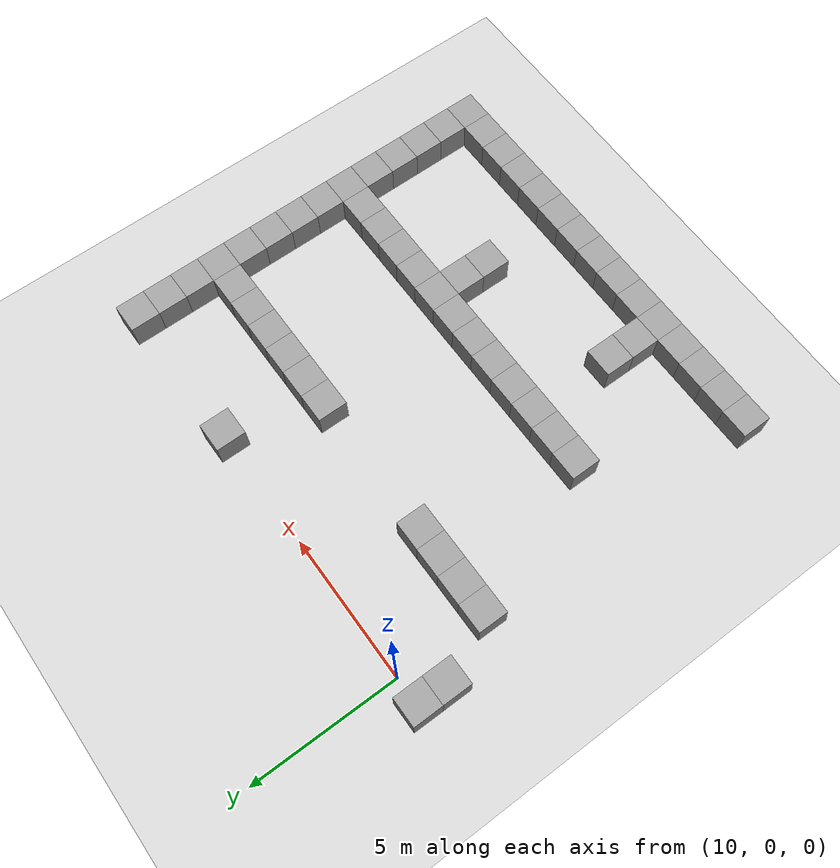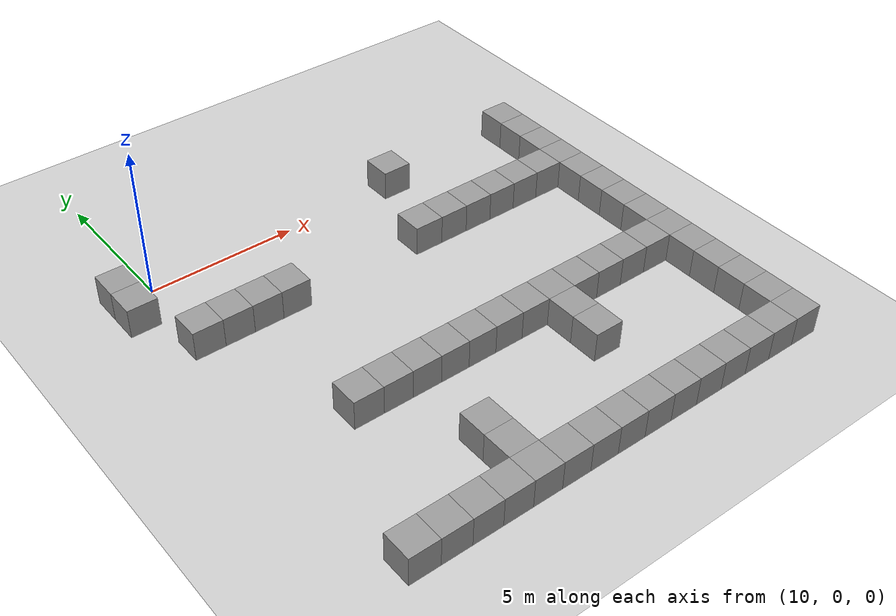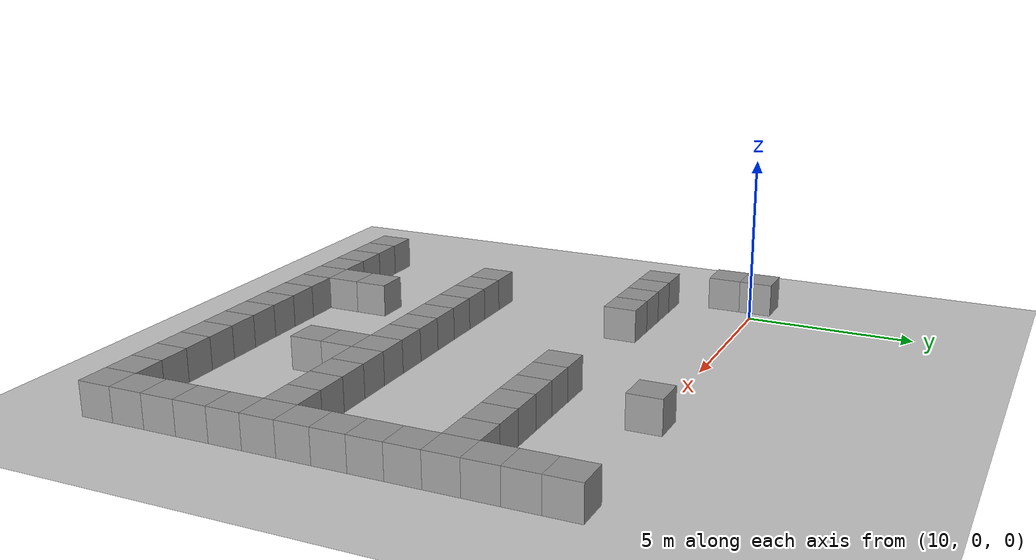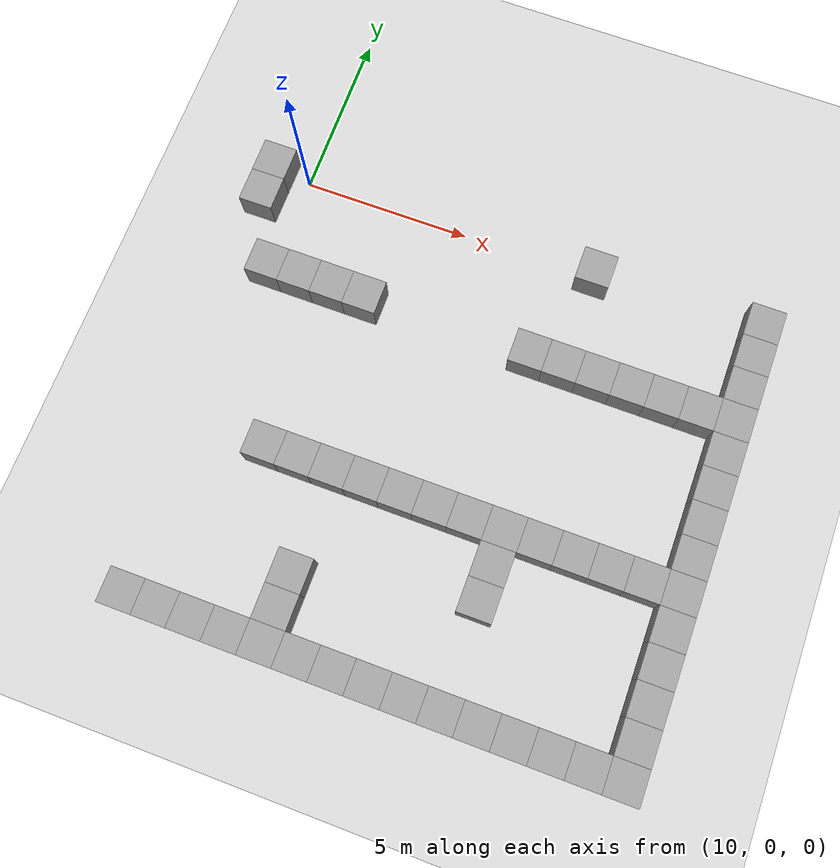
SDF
<sdf version="1.6">
 <world name="default">
  <model name="ground_plane">
   <static>1</static>
   <link name="link">
    <collision name="collision">
     <geometry><plane><normal>0 0 1</normal><size>100 100</size></plane></geometry>
     <surface><friction><ode><mu>100</mu><mu2>50</mu2></ode></friction></surface>
    </collision>
    <visual name="visual">
     <cast_shadows>0</cast_shadows>
     <geometry><plane><normal>0 0 1</normal><size>100 100</size></plane></geometry>
     <material>
      <script><uri>file://media/materials/scripts/gazebo.material</uri><name>Gazebo/Grey</name></script>
     </material>
    </visual>
    <velocity_decay><linear>0</linear><angular>0</angular></velocity_decay>
   </link>
  </model>
  <model name="unit_box_27">
   <pose>9 -1 0.5 0 0 0</pose>
   <static>1</static>
   <link name="link">
    <inertial>
     <mass>1</mass>
     <inertia><ixx>1</ixx><ixy>0</ixy><ixz>0</ixz><iyy>1</iyy><iyz>0</iyz><izz>1</izz></inertia>
    </inertial>
    <collision name="collision"><geometry><box><size>1 1 1</size></box></geometry></collision>
    <visual name="visual">
     <geometry><box><size>1 1 1</size></box></geometry>
     <material>
      <script><uri>file://media/materials/scripts/gazebo.material</uri><name>Gazebo/Grey</name></script>
     </material>
    </visual>
    <velocity_decay><linear>0</linear><angular>0</angular></velocity_decay>
   </link>
   <static>0</static>
  </model>
  <model name="unit_box_28">
   <pose>9 0 0.5 0 0 0</pose>
   <static>1</static>
   <link name="link">
    <inertial>
     <mass>1</mass>
     <inertia><ixx>1</ixx><ixy>0</ixy><ixz>0</ixz><iyy>1</iyy><iyz>0</iyz><izz>1</izz></inertia>
    </inertial>
    <collision name="collision"><geometry><box><size>1 1 1</size></box></geometry></collision>
    <visual name="visual">
     <geometry><box><size>1 1 1</size></box></geometry>
     <material>
      <script><uri>file://media/materials/scripts/gazebo.material</uri><name>Gazebo/Grey</name></script>
     </material>
    </visual>
    <velocity_decay><linear>0</linear><angular>0</angular></velocity_decay>
   </link>
   <static>0</static>
  </model>
  <model name="unit_box_35">
   <pose>10 -3 0.5 0 0 0</pose>
   <static>1</static>
   <link name="link">
    <inertial>
     <mass>1</mass>
     <inertia><ixx>1</ixx><ixy>0</ixy><ixz>0</ixz><iyy>1</iyy><iyz>0</iyz><izz>1</izz></inertia>
    </inertial>
    <collision name="collision"><geometry><box><size>1 1 1</size></box></geometry></collision>
    <visual name="visual">
     <geometry><box><size>1 1 1</size></box></geometry>
     <material>
      <script><uri>file://media/materials/scripts/gazebo.material</uri><name>Gazebo/Grey</name></script>
     </material>
    </visual>
    <velocity_decay><linear>0</linear><angular>0</angular></velocity_decay>
   </link>
   <static>0</static>
  </model>
  <model name="unit_box_36">
   <pose>11 -3 0.5 0 0 0</pose>
   <static>1</static>
   <link name="link">
    <inertial>
     <mass>1</mass>
     <inertia><ixx>1</ixx><ixy>0</ixy><ixz>0</ixz><iyy>1</iyy><iyz>0</iyz><izz>1</izz></inertia>
    </inertial>
    <collision name="collision"><geometry><box><size>1 1 1</size></box></geometry></collision>
    <visual name="visual">
     <geometry><box><size>1 1 1</size></box></geometry>
     <material>
      <script><uri>file://media/materials/scripts/gazebo.material</uri><name>Gazebo/Grey</name></script>
     </material>
    </visual>
    <velocity_decay><linear>0</linear><angular>0</angular></velocity_decay>
   </link>
   <static>0</static>
  </model>
  <model name="unit_box_37">
   <pose>12 -3 0.5 0 0 0</pose>
   <static>1</static>
   <link name="link">
    <inertial>
     <mass>1</mass>
     <inertia><ixx>1</ixx><ixy>0</ixy><ixz>0</ixz><iyy>1</iyy><iyz>0</iyz><izz>1</izz></inertia>
    </inertial>
    <collision name="collision"><geometry><box><size>1 1 1</size></box></geometry></collision>
    <visual name="visual">
     <geometry><box><size>1 1 1</size></box></geometry>
     <material>
      <script><uri>file://media/materials/scripts/gazebo.material</uri><name>Gazebo/Grey</name></script>
     </material>
    </visual>
    <velocity_decay><linear>0</linear><angular>0</angular></velocity_decay>
   </link>
   <static>0</static>
  </model>
  <model name="unit_box_129">
   <pose>13 -3 0.5 0 0 0</pose>
   <static>1</static>
   <link name="link">
    <inertial>
     <mass>1</mass>
     <inertia><ixx>1</ixx><ixy>0</ixy><ixz>0</ixz><iyy>1</iyy><iyz>0</iyz><izz>1</izz></inertia>
    </inertial>
    <collision name="collision"><geometry><box><size>1 1 1</size></box></geometry></collision>
    <visual name="visual">
     <geometry><box><size>1 1 1</size></box></geometry>
     <material>
      <script><uri>file://media/materials/scripts/gazebo.material</uri><name>Gazebo/Grey</name></script>
     </material>
    </visual>
    <velocity_decay><linear>0</linear><angular>0</angular></velocity_decay>
   </link>
   <static>0</static>
  </model>
  <model name="unit_box_182">
   <pose>24 -1 0.5 0 0 0</pose>
   <static>1</static>
   <link name="link">
    <inertial>
     <mass>1</mass>
     <inertia><ixx>1</ixx><ixy>0</ixy><ixz>0</ixz><iyy>1</iyy><iyz>0</iyz><izz>1</izz></inertia>
    </inertial>
    <collision name="collision"><geometry><box><size>1 1 1</size></box></geometry></collision>
    <visual name="visual">
     <geometry><box><size>1 1 1</size></box></geometry>
     <material>
      <script><uri>file://media/materials/scripts/gazebo.material</uri><name>Gazebo/Grey</name></script>
     </material>
    </visual>
    <velocity_decay><linear>0</linear><angular>0</angular></velocity_decay>
   </link>
   <static>0</static>
  </model>
  <model name="unit_box_199">
   <pose>24 0 0.5 0 0 0</pose>
   <static>1</static>
   <link name="link">
    <inertial>
     <mass>1</mass>
     <inertia><ixx>1</ixx><ixy>0</ixy><ixz>0</ixz><iyy>1</iyy><iyz>0</iyz><izz>1</izz></inertia>
    </inertial>
    <collision name="collision"><geometry><box><size>1 1 1</size></box></geometry></collision>
    <visual name="visual">
     <geometry><box><size>1 1 1</size></box></geometry>
     <material>
      <script><uri>file://media/materials/scripts/gazebo.material</uri><name>Gazebo/Grey</name></script>
     </material>
    </visual>
    <velocity_decay><linear>0</linear><angular>0</angular></velocity_decay>
   </link>
   <static>0</static>
  </model>
  <model name="unit_box_203">
   <pose>19 0 0.5 0 0 0</pose>
   <static>1</static>
   <link name="link">
    <inertial>
     <mass>1</mass>
     <inertia><ixx>1</ixx><ixy>0</ixy><ixz>0</ixz><iyy>1</iyy><iyz>0</iyz><izz>1</izz></inertia>
    </inertial>
    <collision name="collision"><geometry><box><size>1 1 1</size></box></geometry></collision>
    <visual name="visual">
     <geometry><box><size>1 1 1</size></box></geometry>
     <material>
      <script><uri>file://media/materials/scripts/gazebo.material</uri><name>Gazebo/Grey</name></script>
     </material>
    </visual>
    <velocity_decay><linear>0</linear><angular>0</angular></velocity_decay>
   </link>
   <static>0</static>
  </model>
  <model name="unit_box_204">
   <pose>24 -2 0.5 0 0 0</pose>
   <static>1</static>
   <link name="link">
    <inertial>
     <mass>1</mass>
     <inertia><ixx>1</ixx><ixy>0</ixy><ixz>0</ixz><iyy>1</iyy><iyz>0</iyz><izz>1</izz></inertia>
    </inertial>
    <collision name="collision"><geometry><box><size>1 1 1</size></box></geometry></collision>
    <visual name="visual">
     <geometry><box><size>1 1 1</size></box></geometry>
     <material>
      <script><uri>file://media/materials/scripts/gazebo.material</uri><name>Gazebo/Grey</name></script>
     </material>
    </visual>
    <velocity_decay><linear>0</linear><angular>0</angular></velocity_decay>
   </link>
   <static>0</static>
  </model>
  <model name="unit_box_205">
   <pose>24 -3 0.5 0 0 0</pose>
   <static>1</static>
   <link name="link">
    <inertial>
     <mass>1</mass>
     <inertia><ixx>1</ixx><ixy>0</ixy><ixz>0</ixz><iyy>1</iyy><iyz>0</iyz><izz>1</izz></inertia>
    </inertial>
    <collision name="collision"><geometry><box><size>1 1 1</size></box></geometry></collision>
    <visual name="visual">
     <geometry><box><size>1 1 1</size></box></geometry>
     <material>
      <script><uri>file://media/materials/scripts/gazebo.material</uri><name>Gazebo/Grey</name></script>
     </material>
    </visual>
    <velocity_decay><linear>0</linear><angular>0</angular></velocity_decay>
   </link>
   <static>0</static>
  </model>
  <model name="unit_box_206">
   <pose>24 -4 0.5 0 0 0</pose>
   <static>1</static>
   <link name="link">
    <inertial>
     <mass>1</mass>
     <inertia><ixx>1</ixx><ixy>0</ixy><ixz>0</ixz><iyy>1</iyy><iyz>0</iyz><izz>1</izz></inertia>
    </inertial>
    <collision name="collision"><geometry><box><size>1 1 1</size></box></geometry></collision>
    <visual name="visual">
     <geometry><box><size>1 1 1</size></box></geometry>
     <material>
      <script><uri>file://media/materials/scripts/gazebo.material</uri><name>Gazebo/Grey</name></script>
     </material>
    </visual>
    <velocity_decay><linear>0</linear><angular>0</angular></velocity_decay>
   </link>
   <static>0</static>
  </model>
  <model name="unit_box_207">
   <pose>24 -5 0.5 0 0 0</pose>
   <static>1</static>
   <link name="link">
    <inertial>
     <mass>1</mass>
     <inertia><ixx>1</ixx><ixy>0</ixy><ixz>0</ixz><iyy>1</iyy><iyz>0</iyz><izz>1</izz></inertia>
    </inertial>
    <collision name="collision"><geometry><box><size>1 1 1</size></box></geometry></collision>
    <visual name="visual">
     <geometry><box><size>1 1 1</size></box></geometry>
     <material>
      <script><uri>file://media/materials/scripts/gazebo.material</uri><name>Gazebo/Grey</name></script>
     </material>
    </visual>
    <velocity_decay><linear>0</linear><angular>0</angular></velocity_decay>
   </link>
   <static>0</static>
  </model>
  <model name="unit_box_208">
   <pose>24 -6 0.5 0 0 0</pose>
   <static>1</static>
   <link name="link">
    <inertial>
     <mass>1</mass>
     <inertia><ixx>1</ixx><ixy>0</ixy><ixz>0</ixz><iyy>1</iyy><iyz>0</iyz><izz>1</izz></inertia>
    </inertial>
    <collision name="collision"><geometry><box><size>1 1 1</size></box></geometry></collision>
    <visual name="visual">
     <geometry><box><size>1 1 1</size></box></geometry>
     <material>
      <script><uri>file://media/materials/scripts/gazebo.material</uri><name>Gazebo/Grey</name></script>
     </material>
    </visual>
    <velocity_decay><linear>0</linear><angular>0</angular></velocity_decay>
   </link>
   <static>0</static>
  </model>
  <model name="unit_box_209">
   <pose>18 -3 0.5 0 0 0</pose>
   <static>1</static>
   <link name="link">
    <inertial>
     <mass>1</mass>
     <inertia><ixx>1</ixx><ixy>0</ixy><ixz>0</ixz><iyy>1</iyy><iyz>0</iyz><izz>1</izz></inertia>
    </inertial>
    <collision name="collision"><geometry><box><size>1 1 1</size></box></geometry></collision>
    <visual name="visual">
     <geometry><box><size>1 1 1</size></box></geometry>
     <material>
      <script><uri>file://media/materials/scripts/gazebo.material</uri><name>Gazebo/Grey</name></script>
     </material>
    </visual>
    <velocity_decay><linear>0</linear><angular>0</angular></velocity_decay>
   </link>
   <static>0</static>
  </model>
  <model name="unit_box_210">
   <pose>19 -3 0.5 0 0 0</pose>
   <static>1</static>
   <link name="link">
    <inertial>
     <mass>1</mass>
     <inertia><ixx>1</ixx><ixy>0</ixy><ixz>0</ixz><iyy>1</iyy><iyz>0</iyz><izz>1</izz></inertia>
    </inertial>
    <collision name="collision"><geometry><box><size>1 1 1</size></box></geometry></collision>
    <visual name="visual">
     <geometry><box><size>1 1 1</size></box></geometry>
     <material>
      <script><uri>file://media/materials/scripts/gazebo.material</uri><name>Gazebo/Grey</name></script>
     </material>
    </visual>
    <velocity_decay><linear>0</linear><angular>0</angular></velocity_decay>
   </link>
   <static>0</static>
  </model>
  <model name="unit_box_211">
   <pose>20 -3 0.5 0 0 0</pose>
   <static>1</static>
   <link name="link">
    <inertial>
     <mass>1</mass>
     <inertia><ixx>1</ixx><ixy>0</ixy><ixz>0</ixz><iyy>1</iyy><iyz>0</iyz><izz>1</izz></inertia>
    </inertial>
    <collision name="collision"><geometry><box><size>1 1 1</size></box></geometry></collision>
    <visual name="visual">
     <geometry><box><size>1 1 1</size></box></geometry>
     <material>
      <script><uri>file://media/materials/scripts/gazebo.material</uri><name>Gazebo/Grey</name></script>
     </material>
    </visual>
    <velocity_decay><linear>0</linear><angular>0</angular></velocity_decay>
   </link>
   <static>0</static>
  </model>
  <model name="unit_box_212">
   <pose>21 -3 0.5 0 0 0</pose>
   <static>1</static>
   <link name="link">
    <inertial>
     <mass>1</mass>
     <inertia><ixx>1</ixx><ixy>0</ixy><ixz>0</ixz><iyy>1</iyy><iyz>0</iyz><izz>1</izz></inertia>
    </inertial>
    <collision name="collision"><geometry><box><size>1 1 1</size></box></geometry></collision>
    <visual name="visual">
     <geometry><box><size>1 1 1</size></box></geometry>
     <material>
      <script><uri>file://media/materials/scripts/gazebo.material</uri><name>Gazebo/Grey</name></script>
     </material>
    </visual>
    <velocity_decay><linear>0</linear><angular>0</angular></velocity_decay>
   </link>
   <static>0</static>
  </model>
  <model name="unit_box_213">
   <pose>22 -3 0.5 0 0 0</pose>
   <static>1</static>
   <link name="link">
    <inertial>
     <mass>1</mass>
     <inertia><ixx>1</ixx><ixy>0</ixy><ixz>0</ixz><iyy>1</iyy><iyz>0</iyz><izz>1</izz></inertia>
    </inertial>
    <collision name="collision"><geometry><box><size>1 1 1</size></box></geometry></collision>
    <visual name="visual">
     <geometry><box><size>1 1 1</size></box></geometry>
     <material>
      <script><uri>file://media/materials/scripts/gazebo.material</uri><name>Gazebo/Grey</name></script>
     </material>
    </visual>
    <velocity_decay><linear>0</linear><angular>0</angular></velocity_decay>
   </link>
   <static>0</static>
  </model>
  <model name="unit_box_214">
   <pose>23 -3 0.5 0 0 0</pose>
   <static>1</static>
   <link name="link">
    <inertial>
     <mass>1</mass>
     <inertia><ixx>1</ixx><ixy>0</ixy><ixz>0</ixz><iyy>1</iyy><iyz>0</iyz><izz>1</izz></inertia>
    </inertial>
    <collision name="collision"><geometry><box><size>1 1 1</size></box></geometry></collision>
    <visual name="visual">
     <geometry><box><size>1 1 1</size></box></geometry>
     <material>
      <script><uri>file://media/materials/scripts/gazebo.material</uri><name>Gazebo/Grey</name></script>
     </material>
    </visual>
    <velocity_decay><linear>0</linear><angular>0</angular></velocity_decay>
   </link>
   <static>0</static>
  </model>
  <model name="unit_box_215">
   <pose>24 -7 0.5 0 0 0</pose>
   <static>1</static>
   <link name="link">
    <inertial>
     <mass>1</mass>
     <inertia><ixx>1</ixx><ixy>0</ixy><ixz>0</ixz><iyy>1</iyy><iyz>0</iyz><izz>1</izz></inertia>
    </inertial>
    <collision name="collision"><geometry><box><size>1 1 1</size></box></geometry></collision>
    <visual name="visual">
     <geometry><box><size>1 1 1</size></box></geometry>
     <material>
      <script><uri>file://media/materials/scripts/gazebo.material</uri><name>Gazebo/Grey</name></script>
     </material>
    </visual>
    <velocity_decay><linear>0</linear><angular>0</angular></velocity_decay>
   </link>
   <static>0</static>
  </model>
  <model name="unit_box_216">
   <pose>24 -8 0.5 0 0 0</pose>
   <static>1</static>
   <link name="link">
    <inertial>
     <mass>1</mass>
     <inertia><ixx>1</ixx><ixy>0</ixy><ixz>0</ixz><iyy>1</iyy><iyz>0</iyz><izz>1</izz></inertia>
    </inertial>
    <collision name="collision"><geometry><box><size>1 1 1</size></box></geometry></collision>
    <visual name="visual">
     <geometry><box><size>1 1 1</size></box></geometry>
     <material>
      <script><uri>file://media/materials/scripts/gazebo.material</uri><name>Gazebo/Grey</name></script>
     </material>
    </visual>
    <velocity_decay><linear>0</linear><angular>0</angular></velocity_decay>
   </link>
   <static>0</static>
  </model>
  <model name="unit_box_217">
   <pose>23 -8 0.5 0 0 0</pose>
   <static>1</static>
   <link name="link">
    <inertial>
     <mass>1</mass>
     <inertia><ixx>1</ixx><ixy>0</ixy><ixz>0</ixz><iyy>1</iyy><iyz>0</iyz><izz>1</izz></inertia>
    </inertial>
    <collision name="collision"><geometry><box><size>1 1 1</size></box></geometry></collision>
    <visual name="visual">
     <geometry><box><size>1 1 1</size></box></geometry>
     <material>
      <script><uri>file://media/materials/scripts/gazebo.material</uri><name>Gazebo/Grey</name></script>
     </material>
    </visual>
    <velocity_decay><linear>0</linear><angular>0</angular></velocity_decay>
   </link>
   <static>0</static>
  </model>
  <model name="unit_box_218">
   <pose>22 -8 0.5 0 0 0</pose>
   <static>1</static>
   <link name="link">
    <inertial>
     <mass>1</mass>
     <inertia><ixx>1</ixx><ixy>0</ixy><ixz>0</ixz><iyy>1</iyy><iyz>0</iyz><izz>1</izz></inertia>
    </inertial>
    <collision name="collision"><geometry><box><size>1 1 1</size></box></geometry></collision>
    <visual name="visual">
     <geometry><box><size>1 1 1</size></box></geometry>
     <material>
      <script><uri>file://media/materials/scripts/gazebo.material</uri><name>Gazebo/Grey</name></script>
     </material>
    </visual>
    <velocity_decay><linear>0</linear><angular>0</angular></velocity_decay>
   </link>
   <static>0</static>
  </model>
  <model name="unit_box_219">
   <pose>21 -8 0.5 0 0 0</pose>
   <static>1</static>
   <link name="link">
    <inertial>
     <mass>1</mass>
     <inertia><ixx>1</ixx><ixy>0</ixy><ixz>0</ixz><iyy>1</iyy><iyz>0</iyz><izz>1</izz></inertia>
    </inertial>
    <collision name="collision"><geometry><box><size>1 1 1</size></box></geometry></collision>
    <visual name="visual">
     <geometry><box><size>1 1 1</size></box></geometry>
     <material>
      <script><uri>file://media/materials/scripts/gazebo.material</uri><name>Gazebo/Grey</name></script>
     </material>
    </visual>
    <velocity_decay><linear>0</linear><angular>0</angular></velocity_decay>
   </link>
   <static>0</static>
  </model>
  <model name="unit_box_220">
   <pose>20 -8 0.5 0 0 0</pose>
   <static>1</static>
   <link name="link">
    <inertial>
     <mass>1</mass>
     <inertia><ixx>1</ixx><ixy>0</ixy><ixz>0</ixz><iyy>1</iyy><iyz>0</iyz><izz>1</izz></inertia>
    </inertial>
    <collision name="collision"><geometry><box><size>1 1 1</size></box></geometry></collision>
    <visual name="visual">
     <geometry><box><size>1 1 1</size></box></geometry>
     <material>
      <script><uri>file://media/materials/scripts/gazebo.material</uri><name>Gazebo/Grey</name></script>
     </material>
    </visual>
    <velocity_decay><linear>0</linear><angular>0</angular></velocity_decay>
   </link>
   <static>0</static>
  </model>
  <model name="unit_box_221">
   <pose>19 -8 0.5 0 0 0</pose>
   <static>1</static>
   <link name="link">
    <inertial>
     <mass>1</mass>
     <inertia><ixx>1</ixx><ixy>0</ixy><ixz>0</ixz><iyy>1</iyy><iyz>0</iyz><izz>1</izz></inertia>
    </inertial>
    <collision name="collision"><geometry><box><size>1 1 1</size></box></geometry></collision>
    <visual name="visual">
     <geometry><box><size>1 1 1</size></box></geometry>
     <material>
      <script><uri>file://media/materials/scripts/gazebo.material</uri><name>Gazebo/Grey</name></script>
     </material>
    </visual>
    <velocity_decay><linear>0</linear><angular>0</angular></velocity_decay>
   </link>
   <static>0</static>
  </model>
  <model name="unit_box_222">
   <pose>18 -8 0.5 0 0 0</pose>
   <static>1</static>
   <link name="link">
    <inertial>
     <mass>1</mass>
     <inertia><ixx>1</ixx><ixy>0</ixy><ixz>0</ixz><iyy>1</iyy><iyz>0</iyz><izz>1</izz></inertia>
    </inertial>
    <collision name="collision"><geometry><box><size>1 1 1</size></box></geometry></collision>
    <visual name="visual">
     <geometry><box><size>1 1 1</size></box></geometry>
     <material>
      <script><uri>file://media/materials/scripts/gazebo.material</uri><name>Gazebo/Grey</name></script>
     </material>
    </visual>
    <velocity_decay><linear>0</linear><angular>0</angular></velocity_decay>
   </link>
   <static>0</static>
  </model>
  <model name="unit_box_223">
   <pose>17 -8 0.5 0 0 0</pose>
   <static>1</static>
   <link name="link">
    <inertial>
     <mass>1</mass>
     <inertia><ixx>1</ixx><ixy>0</ixy><ixz>0</ixz><iyy>1</iyy><iyz>0</iyz><izz>1</izz></inertia>
    </inertial>
    <collision name="collision"><geometry><box><size>1 1 1</size></box></geometry></collision>
    <visual name="visual">
     <geometry><box><size>1 1 1</size></box></geometry>
     <material>
      <script><uri>file://media/materials/scripts/gazebo.material</uri><name>Gazebo/Grey</name></script>
     </material>
    </visual>
    <velocity_decay><linear>0</linear><angular>0</angular></velocity_decay>
   </link>
   <static>0</static>
  </model>
  <model name="unit_box_235">
   <pose>16 -8 0.5 0 0 0</pose>
   <static>1</static>
   <link name="link">
    <inertial>
     <mass>1</mass>
     <inertia><ixx>1</ixx><ixy>0</ixy><ixz>0</ixz><iyy>1</iyy><iyz>0</iyz><izz>1</izz></inertia>
    </inertial>
    <collision name="collision"><geometry><box><size>1 1 1</size></box></geometry></collision>
    <visual name="visual">
     <geometry><box><size>1 1 1</size></box></geometry>
     <material>
      <script><uri>file://media/materials/scripts/gazebo.material</uri><name>Gazebo/Grey</name></script>
     </material>
    </visual>
    <velocity_decay><linear>0</linear><angular>0</angular></velocity_decay>
   </link>
   <static>0</static>
  </model>
  <model name="unit_box_236">
   <pose>15 -8 0.5 0 0 0</pose>
   <static>1</static>
   <link name="link">
    <inertial>
     <mass>1</mass>
     <inertia><ixx>1</ixx><ixy>0</ixy><ixz>0</ixz><iyy>1</iyy><iyz>0</iyz><izz>1</izz></inertia>
    </inertial>
    <collision name="collision"><geometry><box><size>1 1 1</size></box></geometry></collision>
    <visual name="visual">
     <geometry><box><size>1 1 1</size></box></geometry>
     <material>
      <script><uri>file://media/materials/scripts/gazebo.material</uri><name>Gazebo/Grey</name></script>
     </material>
    </visual>
    <velocity_decay><linear>0</linear><angular>0</angular></velocity_decay>
   </link>
   <static>0</static>
  </model>
  <model name="unit_box_237">
   <pose>14 -8 0.5 0 0 0</pose>
   <static>1</static>
   <link name="link">
    <inertial>
     <mass>1</mass>
     <inertia><ixx>1</ixx><ixy>0</ixy><ixz>0</ixz><iyy>1</iyy><iyz>0</iyz><izz>1</izz></inertia>
    </inertial>
    <collision name="collision"><geometry><box><size>1 1 1</size></box></geometry></collision>
    <visual name="visual">
     <geometry><box><size>1 1 1</size></box></geometry>
     <material>
      <script><uri>file://media/materials/scripts/gazebo.material</uri><name>Gazebo/Grey</name></script>
     </material>
    </visual>
    <velocity_decay><linear>0</linear><angular>0</angular></velocity_decay>
   </link>
   <static>0</static>
  </model>
  <model name="unit_box_238">
   <pose>13 -8 0.5 0 0 0</pose>
   <static>1</static>
   <link name="link">
    <inertial>
     <mass>1</mass>
     <inertia><ixx>1</ixx><ixy>0</ixy><ixz>0</ixz><iyy>1</iyy><iyz>0</iyz><izz>1</izz></inertia>
    </inertial>
    <collision name="collision"><geometry><box><size>1 1 1</size></box></geometry></collision>
    <visual name="visual">
     <geometry><box><size>1 1 1</size></box></geometry>
     <material>
      <script><uri>file://media/materials/scripts/gazebo.material</uri><name>Gazebo/Grey</name></script>
     </material>
    </visual>
    <velocity_decay><linear>0</linear><angular>0</angular></velocity_decay>
   </link>
   <static>0</static>
  </model>
  <model name="unit_box_239">
   <pose>12 -8 0.5 0 0 0</pose>
   <static>1</static>
   <link name="link">
    <inertial>
     <mass>1</mass>
     <inertia><ixx>1</ixx><ixy>0</ixy><ixz>0</ixz><iyy>1</iyy><iyz>0</iyz><izz>1</izz></inertia>
    </inertial>
    <collision name="collision"><geometry><box><size>1 1 1</size></box></geometry></collision>
    <visual name="visual">
     <geometry><box><size>1 1 1</size></box></geometry>
     <material>
      <script><uri>file://media/materials/scripts/gazebo.material</uri><name>Gazebo/Grey</name></script>
     </material>
    </visual>
    <velocity_decay><linear>0</linear><angular>0</angular></velocity_decay>
   </link>
   <static>0</static>
  </model>
  <model name="unit_box_265">
   <pose>10 -13 0.5 0 0 0</pose>
   <static>1</static>
   <link name="link">
    <inertial>
     <mass>1</mass>
     <inertia><ixx>1</ixx><ixy>0</ixy><ixz>0</ixz><iyy>1</iyy><iyz>0</iyz><izz>1</izz></inertia>
    </inertial>
    <collision name="collision"><geometry><box><size>1 1 1</size></box></geometry></collision>
    <visual name="visual">
     <geometry><box><size>1 1 1</size></box></geometry>
     <material>
      <script><uri>file://media/materials/scripts/gazebo.material</uri><name>Gazebo/Grey</name></script>
     </material>
    </visual>
    <velocity_decay><linear>0</linear><angular>0</angular></velocity_decay>
   </link>
   <static>0</static>
  </model>
  <model name="unit_box_266">
   <pose>11 -13 0.5 0 0 0</pose>
   <static>1</static>
   <link name="link">
    <inertial>
     <mass>1</mass>
     <inertia><ixx>1</ixx><ixy>0</ixy><ixz>0</ixz><iyy>1</iyy><iyz>0</iyz><izz>1</izz></inertia>
    </inertial>
    <collision name="collision"><geometry><box><size>1 1 1</size></box></geometry></collision>
    <visual name="visual">
     <geometry><box><size>1 1 1</size></box></geometry>
     <material>
      <script><uri>file://media/materials/scripts/gazebo.material</uri><name>Gazebo/Grey</name></script>
     </material>
    </visual>
    <velocity_decay><linear>0</linear><angular>0</angular></velocity_decay>
   </link>
   <static>0</static>
  </model>
  <model name="unit_box_267">
   <pose>12 -13 0.5 0 0 0</pose>
   <static>1</static>
   <link name="link">
    <inertial>
     <mass>1</mass>
     <inertia><ixx>1</ixx><ixy>0</ixy><ixz>0</ixz><iyy>1</iyy><iyz>0</iyz><izz>1</izz></inertia>
    </inertial>
    <collision name="collision"><geometry><box><size>1 1 1</size></box></geometry></collision>
    <visual name="visual">
     <geometry><box><size>1 1 1</size></box></geometry>
     <material>
      <script><uri>file://media/materials/scripts/gazebo.material</uri><name>Gazebo/Grey</name></script>
     </material>
    </visual>
    <velocity_decay><linear>0</linear><angular>0</angular></velocity_decay>
   </link>
   <static>0</static>
  </model>
  <model name="unit_box_268">
   <pose>13 -13 0.5 0 0 0</pose>
   <static>1</static>
   <link name="link">
    <inertial>
     <mass>1</mass>
     <inertia><ixx>1</ixx><ixy>0</ixy><ixz>0</ixz><iyy>1</iyy><iyz>0</iyz><izz>1</izz></inertia>
    </inertial>
    <collision name="collision"><geometry><box><size>1 1 1</size></box></geometry></collision>
    <visual name="visual">
     <geometry><box><size>1 1 1</size></box></geometry>
     <material>
      <script><uri>file://media/materials/scripts/gazebo.material</uri><name>Gazebo/Grey</name></script>
     </material>
    </visual>
    <velocity_decay><linear>0</linear><angular>0</angular></velocity_decay>
   </link>
   <static>0</static>
  </model>
  <model name="unit_box_269">
   <pose>14 -13 0.5 0 0 0</pose>
   <static>1</static>
   <link name="link">
    <inertial>
     <mass>1</mass>
     <inertia><ixx>1</ixx><ixy>0</ixy><ixz>0</ixz><iyy>1</iyy><iyz>0</iyz><izz>1</izz></inertia>
    </inertial>
    <collision name="collision"><geometry><box><size>1 1 1</size></box></geometry></collision>
    <visual name="visual">
     <geometry><box><size>1 1 1</size></box></geometry>
     <material>
      <script><uri>file://media/materials/scripts/gazebo.material</uri><name>Gazebo/Grey</name></script>
     </material>
    </visual>
    <velocity_decay><linear>0</linear><angular>0</angular></velocity_decay>
   </link>
   <static>0</static>
  </model>
  <model name="unit_box_270">
   <pose>14 -12 0.5 0 0 0</pose>
   <static>1</static>
   <link name="link">
    <inertial>
     <mass>1</mass>
     <inertia><ixx>1</ixx><ixy>0</ixy><ixz>0</ixz><iyy>1</iyy><iyz>0</iyz><izz>1</izz></inertia>
    </inertial>
    <collision name="collision"><geometry><box><size>1 1 1</size></box></geometry></collision>
    <visual name="visual">
     <geometry><box><size>1 1 1</size></box></geometry>
     <material>
      <script><uri>file://media/materials/scripts/gazebo.material</uri><name>Gazebo/Grey</name></script>
     </material>
    </visual>
    <velocity_decay><linear>0</linear><angular>0</angular></velocity_decay>
   </link>
   <static>0</static>
  </model>
  <model name="unit_box_271">
   <pose>19 -9 0.5 0 0 0</pose>
   <static>1</static>
   <link name="link">
    <inertial>
     <mass>1</mass>
     <inertia><ixx>1</ixx><ixy>0</ixy><ixz>0</ixz><iyy>1</iyy><iyz>0</iyz><izz>1</izz></inertia>
    </inertial>
    <collision name="collision"><geometry><box><size>1 1 1</size></box></geometry></collision>
    <visual name="visual">
     <geometry><box><size>1 1 1</size></box></geometry>
     <material>
      <script><uri>file://media/materials/scripts/gazebo.material</uri><name>Gazebo/Grey</name></script>
     </material>
    </visual>
    <velocity_decay><linear>0</linear><angular>0</angular></velocity_decay>
   </link>
   <static>0</static>
  </model>
  <model name="unit_box_272">
   <pose>19 -10 0.5 0 0 0</pose>
   <static>1</static>
   <link name="link">
    <inertial>
     <mass>1</mass>
     <inertia><ixx>1</ixx><ixy>0</ixy><ixz>0</ixz><iyy>1</iyy><iyz>0</iyz><izz>1</izz></inertia>
    </inertial>
    <collision name="collision"><geometry><box><size>1 1 1</size></box></geometry></collision>
    <visual name="visual">
     <geometry><box><size>1 1 1</size></box></geometry>
     <material>
      <script><uri>file://media/materials/scripts/gazebo.material</uri><name>Gazebo/Grey</name></script>
     </material>
    </visual>
    <velocity_decay><linear>0</linear><angular>0</angular></velocity_decay>
   </link>
   <static>0</static>
  </model>
  <model name="unit_box_273">
   <pose>14 -11 0.5 0 0 0</pose>
   <static>1</static>
   <link name="link">
    <inertial>
     <mass>1</mass>
     <inertia><ixx>1</ixx><ixy>0</ixy><ixz>0</ixz><iyy>1</iyy><iyz>0</iyz><izz>1</izz></inertia>
    </inertial>
    <collision name="collision"><geometry><box><size>1 1 1</size></box></geometry></collision>
    <visual name="visual">
     <geometry><box><size>1 1 1</size></box></geometry>
     <material>
      <script><uri>file://media/materials/scripts/gazebo.material</uri><name>Gazebo/Grey</name></script>
     </material>
    </visual>
    <velocity_decay><linear>0</linear><angular>0</angular></velocity_decay>
   </link>
   <static>0</static>
  </model>
  <model name="unit_box_274">
   <pose>24 -9 0.5 0 0 0</pose>
   <static>1</static>
   <link name="link">
    <inertial>
     <mass>1</mass>
     <inertia><ixx>1</ixx><ixy>0</ixy><ixz>0</ixz><iyy>1</iyy><iyz>0</iyz><izz>1</izz></inertia>
    </inertial>
    <collision name="collision"><geometry><box><size>1 1 1</size></box></geometry></collision>
    <visual name="visual">
     <geometry><box><size>1 1 1</size></box></geometry>
     <material>
      <script><uri>file://media/materials/scripts/gazebo.material</uri><name>Gazebo/Grey</name></script>
     </material>
    </visual>
    <velocity_decay><linear>0</linear><angular>0</angular></velocity_decay>
   </link>
   <static>0</static>
  </model>
  <model name="unit_box_275">
   <pose>24 -10 0.5 0 0 0</pose>
   <static>1</static>
   <link name="link">
    <inertial>
     <mass>1</mass>
     <inertia><ixx>1</ixx><ixy>0</ixy><ixz>0</ixz><iyy>1</iyy><iyz>0</iyz><izz>1</izz></inertia>
    </inertial>
    <collision name="collision"><geometry><box><size>1 1 1</size></box></geometry></collision>
    <visual name="visual">
     <geometry><box><size>1 1 1</size></box></geometry>
     <material>
      <script><uri>file://media/materials/scripts/gazebo.material</uri><name>Gazebo/Grey</name></script>
     </material>
    </visual>
    <velocity_decay><linear>0</linear><angular>0</angular></velocity_decay>
   </link>
   <static>0</static>
  </model>
  <model name="unit_box_276">
   <pose>24 -11 0.5 0 0 0</pose>
   <static>1</static>
   <link name="link">
    <inertial>
     <mass>1</mass>
     <inertia><ixx>1</ixx><ixy>0</ixy><ixz>0</ixz><iyy>1</iyy><iyz>0</iyz><izz>1</izz></inertia>
    </inertial>
    <collision name="collision"><geometry><box><size>1 1 1</size></box></geometry></collision>
    <visual name="visual">
     <geometry><box><size>1 1 1</size></box></geometry>
     <material>
      <script><uri>file://media/materials/scripts/gazebo.material</uri><name>Gazebo/Grey</name></script>
     </material>
    </visual>
    <velocity_decay><linear>0</linear><angular>0</angular></velocity_decay>
   </link>
   <static>0</static>
  </model>
  <model name="unit_box_277">
   <pose>24 -12 0.5 0 0 0</pose>
   <static>1</static>
   <link name="link">
    <inertial>
     <mass>1</mass>
     <inertia><ixx>1</ixx><ixy>0</ixy><ixz>0</ixz><iyy>1</iyy><iyz>0</iyz><izz>1</izz></inertia>
    </inertial>
    <collision name="collision"><geometry><box><size>1 1 1</size></box></geometry></collision>
    <visual name="visual">
     <geometry><box><size>1 1 1</size></box></geometry>
     <material>
      <script><uri>file://media/materials/scripts/gazebo.material</uri><name>Gazebo/Grey</name></script>
     </material>
    </visual>
    <velocity_decay><linear>0</linear><angular>0</angular></velocity_decay>
   </link>
   <static>0</static>
  </model>
  <model name="unit_box_278">
   <pose>15 -13 0.5 0 0 0</pose>
   <static>1</static>
   <link name="link">
    <inertial>
     <mass>1</mass>
     <inertia><ixx>1</ixx><ixy>0</ixy><ixz>0</ixz><iyy>1</iyy><iyz>0</iyz><izz>1</izz></inertia>
    </inertial>
    <collision name="collision"><geometry><box><size>1 1 1</size></box></geometry></collision>
    <visual name="visual">
     <geometry><box><size>1 1 1</size></box></geometry>
     <material>
      <script><uri>file://media/materials/scripts/gazebo.material</uri><name>Gazebo/Grey</name></script>
     </material>
    </visual>
    <velocity_decay><linear>0</linear><angular>0</angular></velocity_decay>
   </link>
   <static>0</static>
  </model>
  <model name="unit_box_279">
   <pose>16 -13 0.5 0 0 0</pose>
   <static>1</static>
   <link name="link">
    <inertial>
     <mass>1</mass>
     <inertia><ixx>1</ixx><ixy>0</ixy><ixz>0</ixz><iyy>1</iyy><iyz>0</iyz><izz>1</izz></inertia>
    </inertial>
    <collision name="collision"><geometry><box><size>1 1 1</size></box></geometry></collision>
    <visual name="visual">
     <geometry><box><size>1 1 1</size></box></geometry>
     <material>
      <script><uri>file://media/materials/scripts/gazebo.material</uri><name>Gazebo/Grey</name></script>
     </material>
    </visual>
    <velocity_decay><linear>0</linear><angular>0</angular></velocity_decay>
   </link>
   <static>0</static>
  </model>
  <model name="unit_box_280">
   <pose>17 -13 0.5 0 0 0</pose>
   <static>1</static>
   <link name="link">
    <inertial>
     <mass>1</mass>
     <inertia><ixx>1</ixx><ixy>0</ixy><ixz>0</ixz><iyy>1</iyy><iyz>0</iyz><izz>1</izz></inertia>
    </inertial>
    <collision name="collision"><geometry><box><size>1 1 1</size></box></geometry></collision>
    <visual name="visual">
     <geometry><box><size>1 1 1</size></box></geometry>
     <material>
      <script><uri>file://media/materials/scripts/gazebo.material</uri><name>Gazebo/Grey</name></script>
     </material>
    </visual>
    <velocity_decay><linear>0</linear><angular>0</angular></velocity_decay>
   </link>
   <static>0</static>
  </model>
  <model name="unit_box_281">
   <pose>18 -13 0.5 0 0 0</pose>
   <static>1</static>
   <link name="link">
    <inertial>
     <mass>1</mass>
     <inertia><ixx>1</ixx><ixy>0</ixy><ixz>0</ixz><iyy>1</iyy><iyz>0</iyz><izz>1</izz></inertia>
    </inertial>
    <collision name="collision"><geometry><box><size>1 1 1</size></box></geometry></collision>
    <visual name="visual">
     <geometry><box><size>1 1 1</size></box></geometry>
     <material>
      <script><uri>file://media/materials/scripts/gazebo.material</uri><name>Gazebo/Grey</name></script>
     </material>
    </visual>
    <velocity_decay><linear>0</linear><angular>0</angular></velocity_decay>
   </link>
   <static>0</static>
  </model>
  <model name="unit_box_282">
   <pose>19 -13 0.5 0 0 0</pose>
   <static>1</static>
   <link name="link">
    <inertial>
     <mass>1</mass>
     <inertia><ixx>1</ixx><ixy>0</ixy><ixz>0</ixz><iyy>1</iyy><iyz>0</iyz><izz>1</izz></inertia>
    </inertial>
    <collision name="collision"><geometry><box><size>1 1 1</size></box></geometry></collision>
    <visual name="visual">
     <geometry><box><size>1 1 1</size></box></geometry>
     <material>
      <script><uri>file://media/materials/scripts/gazebo.material</uri><name>Gazebo/Grey</name></script>
     </material>
    </visual>
    <velocity_decay><linear>0</linear><angular>0</angular></velocity_decay>
   </link>
   <static>0</static>
  </model>
  <model name="unit_box_283">
   <pose>20 -13 0.5 0 0 0</pose>
   <static>1</static>
   <link name="link">
    <inertial>
     <mass>1</mass>
     <inertia><ixx>1</ixx><ixy>0</ixy><ixz>0</ixz><iyy>1</iyy><iyz>0</iyz><izz>1</izz></inertia>
    </inertial>
    <collision name="collision"><geometry><box><size>1 1 1</size></box></geometry></collision>
    <visual name="visual">
     <geometry><box><size>1 1 1</size></box></geometry>
     <material>
      <script><uri>file://media/materials/scripts/gazebo.material</uri><name>Gazebo/Grey</name></script>
     </material>
    </visual>
    <velocity_decay><linear>0</linear><angular>0</angular></velocity_decay>
   </link>
   <static>0</static>
  </model>
  <model name="unit_box_284">
   <pose>21 -13 0.5 0 0 0</pose>
   <static>1</static>
   <link name="link">
    <inertial>
     <mass>1</mass>
     <inertia><ixx>1</ixx><ixy>0</ixy><ixz>0</ixz><iyy>1</iyy><iyz>0</iyz><izz>1</izz></inertia>
    </inertial>
    <collision name="collision"><geometry><box><size>1 1 1</size></box></geometry></collision>
    <visual name="visual">
     <geometry><box><size>1 1 1</size></box></geometry>
     <material>
      <script><uri>file://media/materials/scripts/gazebo.material</uri><name>Gazebo/Grey</name></script>
     </material>
    </visual>
    <velocity_decay><linear>0</linear><angular>0</angular></velocity_decay>
   </link>
   <static>0</static>
  </model>
  <model name="unit_box_285">
   <pose>22 -13 0.5 0 0 0</pose>
   <static>1</static>
   <link name="link">
    <inertial>
     <mass>1</mass>
     <inertia><ixx>1</ixx><ixy>0</ixy><ixz>0</ixz><iyy>1</iyy><iyz>0</iyz><izz>1</izz></inertia>
    </inertial>
    <collision name="collision"><geometry><box><size>1 1 1</size></box></geometry></collision>
    <visual name="visual">
     <geometry><box><size>1 1 1</size></box></geometry>
     <material>
      <script><uri>file://media/materials/scripts/gazebo.material</uri><name>Gazebo/Grey</name></script>
     </material>
    </visual>
    <velocity_decay><linear>0</linear><angular>0</angular></velocity_decay>
   </link>
   <static>0</static>
  </model>
  <model name="unit_box_286">
   <pose>23 -13 0.5 0 0 0</pose>
   <static>1</static>
   <link name="link">
    <inertial>
     <mass>1</mass>
     <inertia><ixx>1</ixx><ixy>0</ixy><ixz>0</ixz><iyy>1</iyy><iyz>0</iyz><izz>1</izz></inertia>
    </inertial>
    <collision name="collision"><geometry><box><size>1 1 1</size></box></geometry></collision>
    <visual name="visual">
     <geometry><box><size>1 1 1</size></box></geometry>
     <material>
      <script><uri>file://media/materials/scripts/gazebo.material</uri><name>Gazebo/Grey</name></script>
     </material>
    </visual>
    <velocity_decay><linear>0</linear><angular>0</angular></velocity_decay>
   </link>
   <static>0</static>
  </model>
  <model name="unit_box_287">
   <pose>24 -13 0.5 0 0 0</pose>
   <static>1</static>
   <link name="link">
    <inertial>
     <mass>1</mass>
     <inertia><ixx>1</ixx><ixy>0</ixy><ixz>0</ixz><iyy>1</iyy><iyz>0</iyz><izz>1</izz></inertia>
    </inertial>
    <collision name="collision"><geometry><box><size>1 1 1</size></box></geometry></collision>
    <visual name="visual">
     <geometry><box><size>1 1 1</size></box></geometry>
     <material>
      <script><uri>file://media/materials/scripts/gazebo.material</uri><name>Gazebo/Grey</name></script>
     </material>
    </visual>
    <velocity_decay><linear>0</linear><angular>0</angular></velocity_decay>
   </link>
   <static>0</static>
  </model>
  <model name="unit_box_199_clone">
   <pose>24 -1 0.5 0 0 0</pose>
   <static>1</static>
   <link name="link">
    <inertial>
     <mass>1</mass>
     <inertia><ixx>1</ixx><ixy>0</ixy><ixz>0</ixz><iyy>1</iyy><iyz>0</iyz><izz>1</izz></inertia>
    </inertial>
    <collision name="collision"><geometry><box><size>1 1 1</size></box></geometry></collision>
    <visual name="visual">
     <geometry><box><size>1 1 1</size></box></geometry>
     <material>
      <script><uri>file://media/materials/scripts/gazebo.material</uri><name>Gazebo/Grey</name></script>
     </material>
    </visual>
    <velocity_decay><linear>0</linear><angular>0</angular></velocity_decay>
   </link>
   <static>0</static>
  </model>
 </world>
</sdf>
